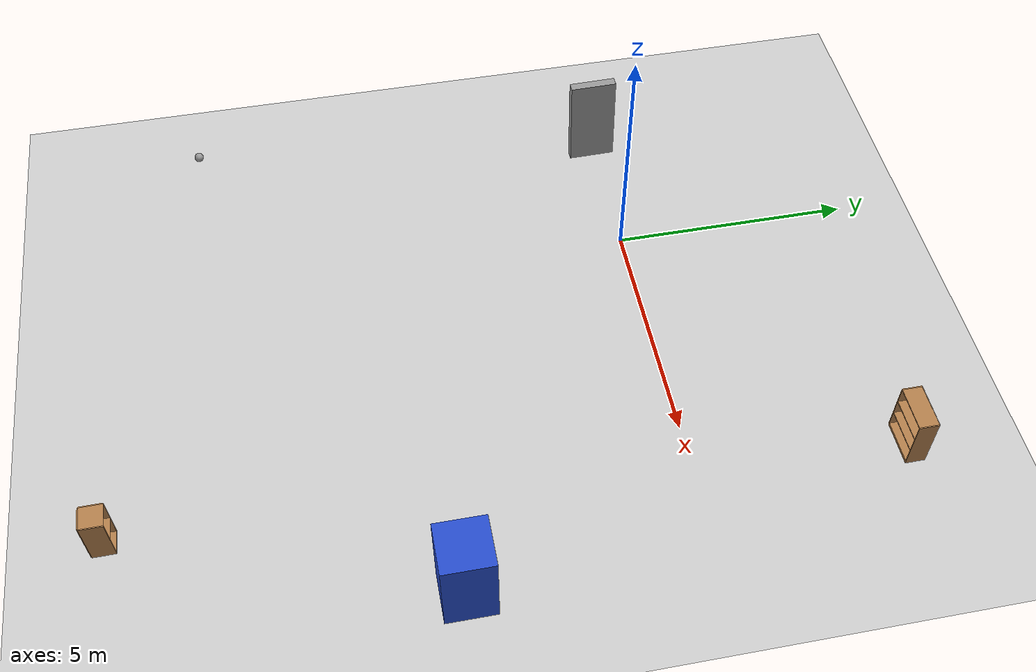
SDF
<sdf version="1.6">
 <world name="default">
  <model name="ground_plane">
   <static>1</static>
   <link name="link">
    <collision name="collision">
     <geometry><plane><normal>0 0 1</normal><size>100 100</size></plane></geometry>
     <surface><friction><ode><mu>100</mu><mu2>50</mu2></ode></friction></surface>
    </collision>
    <visual name="visual">
     <cast_shadows>0</cast_shadows>
     <geometry><plane><normal>0 0 1</normal><size>100 100</size></plane></geometry>
     <material>
      <script><uri>file://media/materials/scripts/gazebo.material</uri><name>Gazebo/Grey</name></script>
     </material>
    </visual>
   </link>
  </model>
  <model name="cabinet">
   <static>1</static>
   <link name="cabinet_bottom_plate">
    <inertial>
     <pose>0 0 -1 0 -0 0</pose>
     <inertia><ixx>2.05</ixx><ixy>0</ixy><ixz>0</ixz><iyy>2.05</iyy><iyz>0</iyz><izz>2.05</izz></inertia>
     <mass>25</mass>
    </inertial>
    <collision name="cabinet_bottom_plate_geom">
     <pose>0 0 0.01 0 -0 0</pose>
     <geometry><box><size>0.45 0.45 0.02</size></box></geometry>
    </collision>
    <visual name="cabinet_bottom_plate_geom_visual">
     <pose>0 0 0.01 0 -0 0</pose>
     <geometry><box><size>0.45 0.45 0.02</size></box></geometry>
     <material>
      <script><uri>file://media/materials/scripts/gazebo.material</uri><name>Gazebo/Wood</name></script>
     </material>
    </visual>
    <collision name="cabinet_bottom_plate_geom_cabinet_back_plate">
     <pose>0.235 0 0.51 0 -0 0</pose>
     <geometry><box><size>0.02 0.45 1.02</size></box></geometry>
    </collision>
    <visual name="cabinet_bottom_plate_geom_cabinet_back_plate_visual">
     <pose>0.235 0 0.51 0 -0 0</pose>
     <geometry><box><size>0.02 0.45 1.02</size></box></geometry>
     <material>
      <script><uri>file://media/materials/scripts/gazebo.material</uri><name>Gazebo/Wood</name></script>
     </material>
    </visual>
    <collision name="cabinet_bottom_plate_geom_cabinet_left_plate">
     <pose>0 0.235 0.51 0 -0 0</pose>
     <geometry><box><size>0.45 0.02 1.02</size></box></geometry>
    </collision>
    <visual name="cabinet_bottom_plate_geom_cabinet_left_plate_visual">
     <pose>0 0.235 0.51 0 -0 0</pose>
     <geometry><box><size>0.45 0.02 1.02</size></box></geometry>
     <material>
      <script><uri>file://media/materials/scripts/gazebo.material</uri><name>Gazebo/Wood</name></script>
     </material>
    </visual>
    <collision name="cabinet_bottom_plate_geom_cabinet_middle_plate">
     <pose>0 0 0.51 0 -0 0</pose>
     <geometry><box><size>0.45 0.45 0.02</size></box></geometry>
    </collision>
    <visual name="cabinet_bottom_plate_geom_cabinet_middle_plate_visual">
     <pose>0 0 0.51 0 -0 0</pose>
     <geometry><box><size>0.45 0.45 0.02</size></box></geometry>
     <material>
      <script><uri>file://media/materials/scripts/gazebo.material</uri><name>Gazebo/Wood</name></script>
     </material>
    </visual>
    <collision name="cabinet_bottom_plate_geom_cabinet_right_plate">
     <pose>0 -0.235 0.51 0 -0 0</pose>
     <geometry><box><size>0.45 0.02 1.02</size></box></geometry>
    </collision>
    <visual name="cabinet_bottom_plate_geom_cabinet_right_plate_visual">
     <pose>0 -0.235 0.51 0 -0 0</pose>
     <geometry><box><size>0.45 0.02 1.02</size></box></geometry>
     <material>
      <script><uri>file://media/materials/scripts/gazebo.material</uri><name>Gazebo/Wood</name></script>
     </material>
    </visual>
    <collision name="cabinet_bottom_plate_geom_cabinet_top_plate">
     <pose>0 0 1.01 0 -0 0</pose>
     <geometry><box><size>0.45 0.45 0.02</size></box></geometry>
    </collision>
    <visual name="cabinet_bottom_plate_geom_cabinet_top_plate_visual">
     <pose>0 0 1.01 0 -0 0</pose>
     <geometry><box><size>0.45 0.45 0.02</size></box></geometry>
     <material>
      <script><uri>file://media/materials/scripts/gazebo.material</uri><name>Gazebo/Wood</name></script>
     </material>
    </visual>
   </link>
   <pose>5.50239 -11.118 0 0 0 -1.5664</pose>
  </model>
  <model name="bookshelf">
   <static>1</static>
   <link name="link">
    <inertial><mass>1</mass></inertial>
    <collision name="back">
     <pose>0 0.005 0.6 0 -0 0</pose>
     <geometry><box><size>0.9 0.01 1.2</size></box></geometry>
    </collision>
    <visual name="visual1">
     <pose>0 0.005 0.6 0 -0 0</pose>
     <geometry><box><size>0.9 0.01 1.2</size></box></geometry>
     <material>
      <script><uri>file://media/materials/scripts/gazebo.material</uri><name>Gazebo/Wood</name></script>
     </material>
    </visual>
    <collision name="left_side">
     <pose>0.45 -0.195 0.6 0 -0 0</pose>
     <geometry><box><size>0.02 0.4 1.2</size></box></geometry>
    </collision>
    <visual name="visual2">
     <pose>0.45 -0.195 0.6 0 -0 0</pose>
     <geometry><box><size>0.02 0.4 1.2</size></box></geometry>
     <material>
      <script><uri>file://media/materials/scripts/gazebo.material</uri><name>Gazebo/Wood</name></script>
     </material>
    </visual>
    <collision name="right_side">
     <pose>-0.45 -0.195 0.6 0 -0 0</pose>
     <geometry><box><size>0.02 0.4 1.2</size></box></geometry>
    </collision>
    <visual name="visual3">
     <pose>-0.45 -0.195 0.6 0 -0 0</pose>
     <geometry><box><size>0.02 0.4 1.2</size></box></geometry>
     <material>
      <script><uri>file://media/materials/scripts/gazebo.material</uri><name>Gazebo/Wood</name></script>
     </material>
    </visual>
    <collision name="bottom">
     <pose>0 -0.195 0.03 0 -0 0</pose>
     <geometry><box><size>0.88 0.4 0.06</size></box></geometry>
    </collision>
    <visual name="visual4">
     <pose>0 -0.195 0.03 0 -0 0</pose>
     <geometry><box><size>0.88 0.4 0.06</size></box></geometry>
     <material>
      <script><uri>file://media/materials/scripts/gazebo.material</uri><name>Gazebo/Wood</name></script>
     </material>
    </visual>
    <collision name="top">
     <pose>0 -0.195 1.19 0 -0 0</pose>
     <geometry><box><size>0.88 0.4 0.02</size></box></geometry>
    </collision>
    <visual name="visual5">
     <pose>0 -0.195 1.19 0 -0 0</pose>
     <geometry><box><size>0.88 0.4 0.02</size></box></geometry>
     <material>
      <script><uri>file://media/materials/scripts/gazebo.material</uri><name>Gazebo/Wood</name></script>
     </material>
    </visual>
    <collision name="low_shelf">
     <pose>0 -0.195 0.43 0 -0 0</pose>
     <geometry><box><size>0.88 0.4 0.02</size></box></geometry>
    </collision>
    <visual name="visual6">
     <pose>0 -0.195 0.43 0 -0 0</pose>
     <geometry><box><size>0.88 0.4 0.02</size></box></geometry>
     <material>
      <script><uri>file://media/materials/scripts/gazebo.material</uri><name>Gazebo/Wood</name></script>
     </material>
    </visual>
    <collision name="high_shelf">
     <pose>0 -0.195 0.8 0 -0 0</pose>
     <geometry><box><size>0.88 0.4 0.02</size></box></geometry>
    </collision>
    <visual name="visual7">
     <pose>0 -0.195 0.8 0 -0 0</pose>
     <geometry><box><size>0.88 0.4 0.02</size></box></geometry>
     <material>
      <script><uri>file://media/materials/scripts/gazebo.material</uri><name>Gazebo/Wood</name></script>
     </material>
    </visual>
   </link>
   <pose>6.15215 4.45945 0 0 -0 0</pose>
  </model>
  <model name="my_ball">
   <link name="link_0">
    <inertial>
     <mass>1</mass>
     <inertia><ixx>0.1</ixx><ixy>0</ixy><ixz>0</ixz><iyy>0.1</iyy><iyz>0</iyz><izz>0.1</izz></inertia>
    </inertial>
    <visual name="visual">
     <geometry><sphere><radius>0.1</radius></sphere></geometry>
     <material>
      <lighting>1</lighting>
      <script><uri>file://media/materials/scripts/gazebo.material</uri><name>Gazebo/Grey</name></script>
      <shader type="vertex"><normal_map>__default__</normal_map></shader>
      <ambient>1 1 1 1</ambient>
      <diffuse>1 1 1 1</diffuse>
      <specular>1 1 1 1</specular>
      <emissive>1 1 1 1</emissive>
     </material>
    </visual>
    <collision name="collision">
     <geometry><sphere><radius>0.1</radius></sphere></geometry>
     <surface>
      <friction>
       <ode><mu>1</mu><mu2>1</mu2><fdir1>0 0 0</fdir1><slip1>0</slip1><slip2>0</slip2></ode>
       <torsional>
        <coefficient>1</coefficient>
        <patch_radius>0</patch_radius>
        <surface_radius>0</surface_radius>
        <use_patch_radius>1</use_patch_radius>
        <ode><slip>0</slip></ode>
       </torsional>
      </friction>
      <bounce><restitution_coefficient>0</restitution_coefficient><threshold>1e+06</threshold></bounce>
      <contact>
       <collide_without_contact>0</collide_without_contact>
       <collide_without_contact_bitmask>1</collide_without_contact_bitmask>
       <collide_bitmask>1</collide_bitmask>
       <ode>
        <soft_cfm>0</soft_cfm>
        <soft_erp>0.2</soft_erp>
        <kp>1e+13</kp>
        <kd>1</kd>
        <max_vel>0.01</max_vel>
        <min_depth>0</min_depth>
       </ode>
       <bullet>
        <split_impulse>1</split_impulse>
        <split_impulse_penetration_threshold>-0.01</split_impulse_penetration_threshold>
        <soft_cfm>0</soft_cfm>
        <soft_erp>0.2</soft_erp>
        <kp>1e+13</kp>
        <kd>1</kd>
       </bullet>
      </contact>
     </surface>
    </collision>
   </link>
   <static>0</static>
   <pose>-4.22354 -8.99544 0.1 0 -0 0</pose>
  </model>
  <model name="door">
   <link name="link">
    <inertial>
     <mass>1</mass>
     <inertia>
      <ixx>0.166667</ixx>
      <ixy>0</ixy>
      <ixz>0</ixz>
      <iyy>0.166667</iyy>
      <iyz>0</iyz>
      <izz>0.166667</izz>
     </inertia>
    </inertial>
    <pose>0 0 0.5 0 -0 0</pose>
    <visual name="visual">
     <geometry><box><size>0.2 1 2</size></box></geometry>
     <material>
      <script><name>Gazebo/Grey</name><uri>file://media/materials/scripts/gazebo.material</uri></script>
      <shader type="vertex"><normal_map>__default__</normal_map></shader>
      <ambient>0.3 0.3 0.3 1</ambient>
      <diffuse>0.7 0.7 0.7 1</diffuse>
      <specular>0.01 0.01 0.01 1</specular>
      <emissive>0 0 0 1</emissive>
     </material>
    </visual>
    <collision name="collision">
     <geometry><box><size>0.2 1 2</size></box></geometry>
     <surface>
      <friction>
       <ode><mu>1</mu><mu2>1</mu2><fdir1>0 0 0</fdir1><slip1>0</slip1><slip2>0</slip2></ode>
       <torsional>
        <coefficient>1</coefficient>
        <patch_radius>0</patch_radius>
        <surface_radius>0</surface_radius>
        <use_patch_radius>1</use_patch_radius>
        <ode><slip>0</slip></ode>
       </torsional>
      </friction>
      <bounce><restitution_coefficient>0</restitution_coefficient><threshold>1e+06</threshold></bounce>
      <contact>
       <collide_without_contact>0</collide_without_contact>
       <collide_without_contact_bitmask>1</collide_without_contact_bitmask>
       <collide_bitmask>1</collide_bitmask>
       <ode>
        <soft_cfm>0</soft_cfm>
        <soft_erp>0.2</soft_erp>
        <kp>1e+13</kp>
        <kd>1</kd>
        <max_vel>0.01</max_vel>
        <min_depth>0</min_depth>
       </ode>
       <bullet>
        <split_impulse>1</split_impulse>
        <split_impulse_penetration_threshold>-0.01</split_impulse_penetration_threshold>
        <soft_cfm>0</soft_cfm>
        <soft_erp>0.2</soft_erp>
        <kp>1e+13</kp>
        <kd>1</kd>
       </bullet>
      </contact>
     </surface>
    </collision>
   </link>
   <static>0</static>
   <pose>-2.81794 -0.062118 0.504463 -3.8e-05 -0.053602 0.016543</pose>
  </model>
  <model name="unit_box_0_clone">
   <link name="link">
    <inertial>
     <mass>1</mass>
     <inertia>
      <ixx>0.166667</ixx>
      <ixy>0</ixy>
      <ixz>0</ixz>
      <iyy>0.166667</iyy>
      <iyz>0</iyz>
      <izz>0.166667</izz>
     </inertia>
    </inertial>
    <visual name="visual">
     <geometry><box><size>1 1 1.83986</size></box></geometry>
     <material>
      <script><name>Gazebo/Blue</name><uri>file://media/materials/scripts/gazebo.material</uri></script>
      <shader type="vertex"><normal_map>__default__</normal_map></shader>
      <ambient>0 0 1 1</ambient>
      <diffuse>0 0 1 1</diffuse>
      <specular>0.1 0.1 0.1 1</specular>
      <emissive>0 0 0 1</emissive>
     </material>
    </visual>
    <collision name="collision">
     <geometry><box><size>1 1 1.83986</size></box></geometry>
     <surface>
      <friction>
       <ode><mu>1</mu><mu2>1</mu2><fdir1>0 0 0</fdir1><slip1>0</slip1><slip2>0</slip2></ode>
       <torsional>
        <coefficient>1</coefficient>
        <patch_radius>0</patch_radius>
        <surface_radius>0</surface_radius>
        <use_patch_radius>1</use_patch_radius>
        <ode><slip>0</slip></ode>
       </torsional>
      </friction>
      <bounce><restitution_coefficient>0</restitution_coefficient><threshold>1e+06</threshold></bounce>
      <contact>
       <collide_without_contact>0</collide_without_contact>
       <collide_without_contact_bitmask>1</collide_without_contact_bitmask>
       <collide_bitmask>1</collide_bitmask>
       <ode>
        <soft_cfm>0</soft_cfm>
        <soft_erp>0.2</soft_erp>
        <kp>1e+13</kp>
        <kd>1</kd>
        <max_vel>0.01</max_vel>
        <min_depth>0</min_depth>
       </ode>
       <bullet>
        <split_impulse>1</split_impulse>
        <split_impulse_penetration_threshold>-0.01</split_impulse_penetration_threshold>
        <soft_cfm>0</soft_cfm>
        <soft_erp>0.2</soft_erp>
        <kp>1e+13</kp>
        <kd>1</kd>
       </bullet>
      </contact>
     </surface>
    </collision>
   </link>
   <static>0</static>
   <pose>7.75004 -4.68373 0.91993 1e-06 1e-06 -9.6e-05</pose>
  </model>
 </world>
</sdf>
